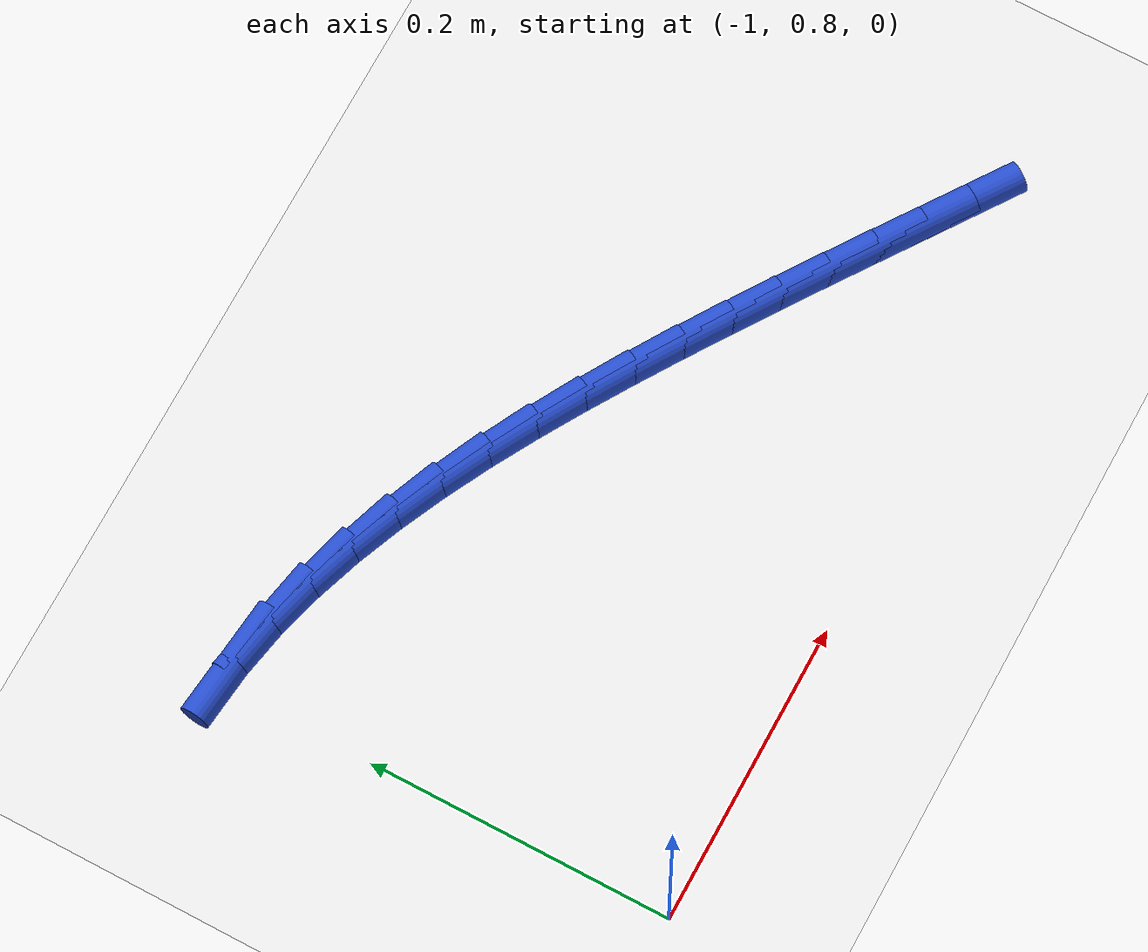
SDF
<sdf version="1.6">
 <world name="default">
  <model name="ground_plane">
   <static>1</static>
   <link name="link">
    <collision name="collision">
     <geometry><plane><normal>0 0 1</normal><size>100 100</size></plane></geometry>
     <surface><friction><ode><mu>100</mu><mu2>50</mu2></ode></friction></surface>
    </collision>
    <visual name="visual">
     <cast_shadows>0</cast_shadows>
     <geometry><plane><normal>0 0 1</normal><size>100 100</size></plane></geometry>
     <material>
      <script><uri>file://media/materials/scripts/gazebo.material</uri><name>Gazebo/WhiteGlow</name></script>
     </material>
    </visual>
   </link>
  </model>
  <model name="line">
   <link name="link_32">
    <pose>-0.5233795682869131 0.8516324063313944 0.01 0 1.57 -0.6075108740332876</pose>
    <collision name="collision">
     <geometry><cylinder><radius>0.01</radius><length>0.08</length></cylinder></geometry>
    </collision>
    <visual name="visual">
     <material>
      <script><name>Gazebo/Blue</name><uri>file://media/materials/scripts/gazebo.material</uri></script>
     </material>
     <geometry><cylinder><radius>0.01</radius><length>0.08</length></cylinder></geometry>
    </visual>
   </link>
   <link name="link_33">
    <pose>-0.5501766999237757 0.8702623150484877 0.01 0 1.57 -0.6073357224820237</pose>
    <collision name="collision">
     <geometry><cylinder><radius>0.01</radius><length>0.08</length></cylinder></geometry>
    </collision>
    <visual name="visual">
     <material>
      <script><name>Gazebo/Blue</name><uri>file://media/materials/scripts/gazebo.material</uri></script>
     </material>
     <geometry><cylinder><radius>0.01</radius><length>0.08</length></cylinder></geometry>
    </visual>
   </link>
   <link name="link_34">
    <pose>-0.576976049208537 0.8888868036880374 0.01 0 1.57 -0.6047021967439316</pose>
    <collision name="collision">
     <geometry><cylinder><radius>0.01</radius><length>0.08</length></cylinder></geometry>
    </collision>
    <visual name="visual">
     <material>
      <script><name>Gazebo/Blue</name><uri>file://media/materials/scripts/gazebo.material</uri></script>
     </material>
     <geometry><cylinder><radius>0.01</radius><length>0.08</length></cylinder></geometry>
    </visual>
   </link>
   <link name="link_35">
    <pose>-0.6038712883335569 0.907473085885029 0.01 0 1.57 -0.5996372483421207</pose>
    <collision name="collision">
     <geometry><cylinder><radius>0.01</radius><length>0.08</length></cylinder></geometry>
    </collision>
    <visual name="visual">
     <material>
      <script><name>Gazebo/Blue</name><uri>file://media/materials/scripts/gazebo.material</uri></script>
     </material>
     <geometry><cylinder><radius>0.01</radius><length>0.08</length></cylinder></geometry>
    </visual>
   </link>
   <link name="link_36">
    <pose>-0.6309560894911962 0.9259883752744485 0.01 0 1.57 -0.5921938842149779</pose>
    <collision name="collision">
     <geometry><cylinder><radius>0.01</radius><length>0.08</length></cylinder></geometry>
    </collision>
    <visual name="visual">
     <material>
      <script><name>Gazebo/Blue</name><uri>file://media/materials/scripts/gazebo.material</uri></script>
     </material>
     <geometry><cylinder><radius>0.01</radius><length>0.08</length></cylinder></geometry>
    </visual>
   </link>
   <link name="link_37">
    <pose>-0.6583241248738165 0.944399885491283 0.01 0 1.57 -0.5824506203060552</pose>
    <collision name="collision">
     <geometry><cylinder><radius>0.01</radius><length>0.08</length></cylinder></geometry>
    </collision>
    <visual name="visual">
     <material>
      <script><name>Gazebo/Blue</name><uri>file://media/materials/scripts/gazebo.material</uri></script>
     </material>
     <geometry><cylinder><radius>0.01</radius><length>0.08</length></cylinder></geometry>
    </visual>
   </link>
   <link name="link_38">
    <pose>-0.6860690666737779 0.9626748301705175 0.01 0 1.57 -0.570480470619888</pose>
    <collision name="collision">
     <geometry><cylinder><radius>0.01</radius><length>0.08</length></cylinder></geometry>
    </collision>
    <visual name="visual">
     <material>
      <script><name>Gazebo/Blue</name><uri>file://media/materials/scripts/gazebo.material</uri></script>
     </material>
     <geometry><cylinder><radius>0.01</radius><length>0.08</length></cylinder></geometry>
    </visual>
   </link>
   <link name="link_39">
    <pose>-0.7142835359607912 0.9807785492517747 0.01 0 1.57 -0.5549319335862585</pose>
    <collision name="collision">
     <geometry><cylinder><radius>0.01</radius><length>0.08</length></cylinder></geometry>
    </collision>
    <visual name="visual">
     <material>
      <script><name>Gazebo/Blue</name><uri>file://media/materials/scripts/gazebo.material</uri></script>
     </material>
     <geometry><cylinder><radius>0.01</radius><length>0.08</length></cylinder></geometry>
    </visual>
   </link>
   <link name="link_40">
    <pose>-0.7430095182004149 0.9985861213747973 0.01 0 1.57 -0.5336857095382176</pose>
    <collision name="collision">
     <geometry><cylinder><radius>0.01</radius><length>0.08</length></cylinder></geometry>
    </collision>
    <visual name="visual">
     <material>
      <script><name>Gazebo/Blue</name><uri>file://media/materials/scripts/gazebo.material</uri></script>
     </material>
     <geometry><cylinder><radius>0.01</radius><length>0.08</length></cylinder></geometry>
    </visual>
   </link>
   <link name="link_41">
    <pose>-0.7722169324519302 1.0158441620629637 0.01 0 1.57 -0.5063580423142789</pose>
    <collision name="collision">
     <geometry><cylinder><radius>0.01</radius><length>0.08</length></cylinder></geometry>
    </collision>
    <visual name="visual">
     <material>
      <script><name>Gazebo/Blue</name><uri>file://media/materials/scripts/gazebo.material</uri></script>
     </material>
     <geometry><cylinder><radius>0.01</radius><length>0.08</length></cylinder></geometry>
    </visual>
   </link>
   <link name="link_42">
    <pose>-0.8018701924237545 1.0322894731890886 0.01 0 1.57 -0.47259146949367226</pose>
    <collision name="collision">
     <geometry><cylinder><radius>0.01</radius><length>0.08</length></cylinder></geometry>
    </collision>
    <visual name="visual">
     <material>
      <script><name>Gazebo/Blue</name><uri>file://media/materials/scripts/gazebo.material</uri></script>
     </material>
     <geometry><cylinder><radius>0.01</radius><length>0.08</length></cylinder></geometry>
    </visual>
   </link>
   <link name="link_43">
    <pose>-0.8319337118243044 1.0476588566259866 0.01 0 1.57 -0.4319163879325621</pose>
    <collision name="collision">
     <geometry><cylinder><radius>0.01</radius><length>0.08</length></cylinder></geometry>
    </collision>
    <visual name="visual">
     <material>
      <script><name>Gazebo/Blue</name><uri>file://media/materials/scripts/gazebo.material</uri></script>
     </material>
     <geometry><cylinder><radius>0.01</radius><length>0.08</length></cylinder></geometry>
    </visual>
   </link>
   <link name="link_44">
    <pose>-0.8623719043619977 1.0616891142464717 0.01 0 1.57 -0.3837798476056508</pose>
    <collision name="collision">
     <geometry><cylinder><radius>0.01</radius><length>0.08</length></cylinder></geometry>
    </collision>
    <visual name="visual">
     <material>
      <script><name>Gazebo/Blue</name><uri>file://media/materials/scripts/gazebo.material</uri></script>
     </material>
     <geometry><cylinder><radius>0.01</radius><length>0.08</length></cylinder></geometry>
    </visual>
   </link>
   <link name="link_45">
    <pose>-0.8931491837452515 1.0741170479233588 0.01 0 1.57 -0.3275927530733358</pose>
    <collision name="collision">
     <geometry><cylinder><radius>0.01</radius><length>0.08</length></cylinder></geometry>
    </collision>
    <visual name="visual">
     <material>
      <script><name>Gazebo/Blue</name><uri>file://media/materials/scripts/gazebo.material</uri></script>
     </material>
     <geometry><cylinder><radius>0.01</radius><length>0.08</length></cylinder></geometry>
    </visual>
   </link>
   <link name="link_46">
    <pose>-0.9242299636824829 1.084679459529462 0.01 0 1.57 -0.2628061006002471</pose>
    <collision name="collision">
     <geometry><cylinder><radius>0.01</radius><length>0.08</length></cylinder></geometry>
    </collision>
    <visual name="visual">
     <material>
      <script><name>Gazebo/Blue</name><uri>file://media/materials/scripts/gazebo.material</uri></script>
     </material>
     <geometry><cylinder><radius>0.01</radius><length>0.08</length></cylinder></geometry>
    </visual>
   </link>
   <link name="link_47">
    <pose>-0.9555786578821089 1.0931131509375958 0.01 0 1.57 -0.18902623507460303</pose>
    <collision name="collision">
     <geometry><cylinder><radius>0.01</radius><length>0.08</length></cylinder></geometry>
    </collision>
    <visual name="visual">
     <material>
      <script><name>Gazebo/Blue</name><uri>file://media/materials/scripts/gazebo.material</uri></script>
     </material>
     <geometry><cylinder><radius>0.01</radius><length>0.08</length></cylinder></geometry>
    </visual>
   </link>
   <link name="link_48">
    <pose>-0.9871596800525467 1.0991549240205745 0.01 0 1.57 -0.10618507129141638</pose>
    <collision name="collision">
     <geometry><cylinder><radius>0.01</radius><length>0.08</length></cylinder></geometry>
    </collision>
    <visual name="visual">
     <material>
      <script><name>Gazebo/Blue</name><uri>file://media/materials/scripts/gazebo.material</uri></script>
     </material>
     <geometry><cylinder><radius>0.01</radius><length>0.08</length></cylinder></geometry>
    </visual>
   </link>
  </model>
 </world>
</sdf>
